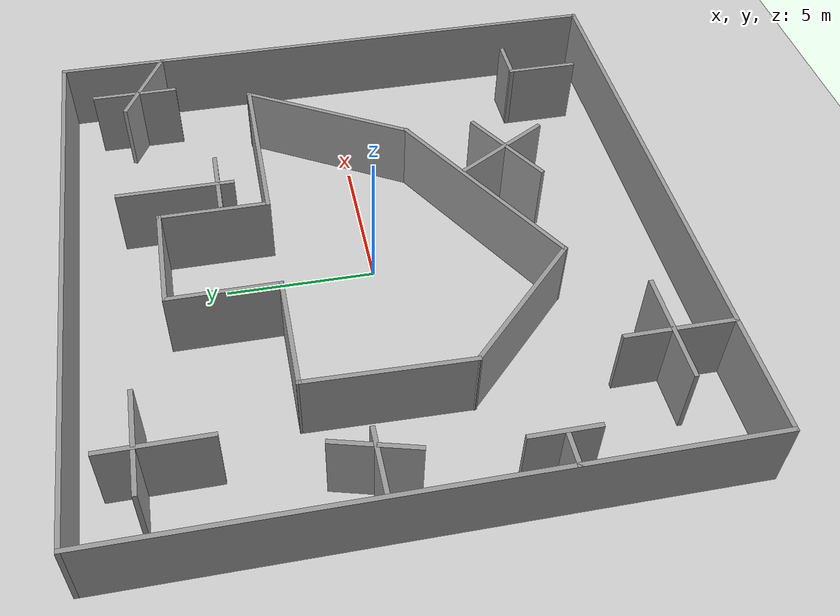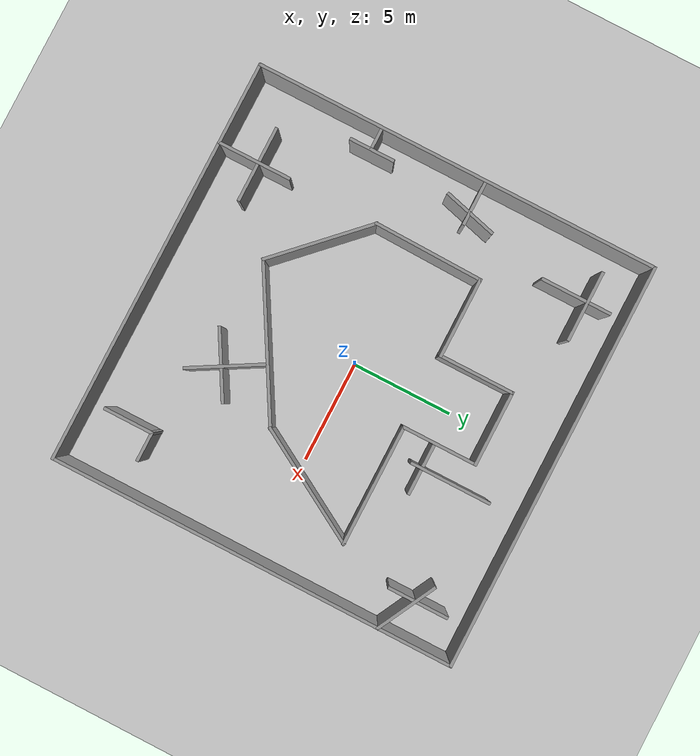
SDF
<sdf version="1.6">
 <world name="default">
  <light name="sun" type="directional">
   <pose>0 0 10 0 -0 0</pose>
   <diffuse>0.8 0.8 0.8 1</diffuse>
   <specular>0.2 0.2 0.2 1</specular>
   <attenuation>
    <range>1000</range>
    <constant>0.9</constant>
    <linear>0.01</linear>
    <quadratic>0.001</quadratic>
   </attenuation>
   <direction>-0.5 0.1 -0.9</direction>
  </light>
  <model name="ground_plane">
   <static>1</static>
   <link name="link">
    <collision name="collision">
     <geometry><plane><normal>0 0 1</normal><size>100 100</size></plane></geometry>
     <surface>
      <contact><collide_bitmask>65535</collide_bitmask></contact>
      <friction><ode><mu>100</mu><mu2>50</mu2></ode></friction>
     </surface>
    </collision>
    <visual name="visual">
     <cast_shadows>0</cast_shadows>
     <geometry><plane><normal>0 0 1</normal><size>100 100</size></plane></geometry>
     <material>
      <script><uri>file://media/materials/scripts/gazebo.material</uri><name>Gazebo/Grey</name></script>
     </material>
    </visual>
   </link>
  </model>
  <gravity>0 0 -9.8</gravity>
  <magnetic_field>6e-06 2.3e-05 -4.2e-05</magnetic_field>
  <atmosphere type="adiabatic"/>
  <physics name="default_physics" default="0" type="ode">
   <max_step_size>0.001</max_step_size>
   <real_time_factor>1</real_time_factor>
   <real_time_update_rate>1000</real_time_update_rate>
  </physics>
  <scene><ambient>0.4 0.4 0.4 1</ambient><background>0.7 0.7 0.7 1</background><shadows>1</shadows></scene>
  <audio><device>default</device></audio>
  <spherical_coordinates>
   <surface_model>EARTH_WGS84</surface_model>
   <latitude_deg>0</latitude_deg>
   <longitude_deg>0</longitude_deg>
   <elevation>0</elevation>
   <heading_deg>0</heading_deg>
  </spherical_coordinates>
  <model name="corner">
   <pose>0.013089 0 0 0 -0 0</pose>
   <link name="Wall_0">
    <collision name="Wall_0_Collision">
     <geometry><box><size>20.15 0.15 2.5</size></box></geometry>
     <pose>0 0 1.25 0 -0 0</pose>
    </collision>
    <visual name="Wall_0_Visual">
     <pose>0 0 1.25 0 -0 0</pose>
     <geometry><box><size>20.15 0.15 2.5</size></box></geometry>
     <material>
      <script><uri>file://media/materials/scripts/gazebo.material</uri><name>Gazebo/Grey</name></script>
      <ambient>1 1 1 1</ambient>
     </material>
     <meta><layer>0</layer></meta>
    </visual>
    <pose>-0.013089 -10 0 0 -0 0</pose>
   </link>
   <link name="Wall_1">
    <collision name="Wall_1_Collision">
     <geometry><box><size>20.15 0.15 2.5</size></box></geometry>
     <pose>0 0 1.25 0 -0 0</pose>
    </collision>
    <visual name="Wall_1_Visual">
     <pose>0 0 1.25 0 -0 0</pose>
     <geometry><box><size>20.15 0.15 2.5</size></box></geometry>
     <material>
      <script><uri>file://media/materials/scripts/gazebo.material</uri><name>Gazebo/Grey</name></script>
      <ambient>1 1 1 1</ambient>
     </material>
     <meta><layer>0</layer></meta>
    </visual>
    <pose>9.98691 0 0 0 -0 1.5708</pose>
   </link>
   <link name="Wall_10">
    <collision name="Wall_10_Collision">
     <geometry><box><size>6.25 0.15 2.5</size></box></geometry>
     <pose>0 0 1.25 0 -0 0</pose>
    </collision>
    <visual name="Wall_10_Visual">
     <pose>0 0 1.25 0 -0 0</pose>
     <geometry><box><size>6.25 0.15 2.5</size></box></geometry>
     <material>
      <script><uri>file://media/materials/scripts/gazebo.material</uri><name>Gazebo/Grey</name></script>
      <ambient>1 1 1 1</ambient>
     </material>
     <meta><layer>0</layer></meta>
    </visual>
    <pose>5.85445 0.643819 0 0 -0 -2.0944</pose>
   </link>
   <link name="Wall_11">
    <collision name="Wall_11_Collision">
     <geometry><box><size>7.75 0.15 2.5</size></box></geometry>
     <pose>0 0 1.25 0 -0 0</pose>
    </collision>
    <visual name="Wall_11_Visual">
     <pose>0 0 1.25 0 -0 0</pose>
     <geometry><box><size>7.75 0.15 2.5</size></box></geometry>
     <material>
      <script><uri>file://media/materials/scripts/gazebo.material</uri><name>Gazebo/Grey</name></script>
      <ambient>1 1 1 1</ambient>
     </material>
     <meta><layer>0</layer></meta>
    </visual>
    <pose>1.03855 -3.89756 0 0 -0 -2.61799</pose>
   </link>
   <link name="Wall_12">
    <collision name="Wall_12_Collision">
     <geometry><box><size>5.5 0.15 2.5</size></box></geometry>
     <pose>0 0 1.25 0 -0 0</pose>
    </collision>
    <visual name="Wall_12_Visual">
     <pose>0 0 1.25 0 -0 0</pose>
     <geometry><box><size>5.5 0.15 2.5</size></box></geometry>
     <material>
      <script><uri>file://media/materials/scripts/gazebo.material</uri><name>Gazebo/Grey</name></script>
      <ambient>1 1 1 1</ambient>
     </material>
     <meta><layer>0</layer></meta>
    </visual>
    <pose>-4.14386 -3.90605 0 0 -0 2.35619</pose>
   </link>
   <link name="Wall_13">
    <collision name="Wall_13_Collision">
     <geometry><box><size>5.45098 0.15 2.5</size></box></geometry>
     <pose>0 0 1.25 0 -0 0</pose>
    </collision>
    <visual name="Wall_13_Visual">
     <pose>0 0 1.25 0 -0 0</pose>
     <geometry><box><size>5.45098 0.15 2.5</size></box></geometry>
     <material>
      <script><uri>file://media/materials/scripts/gazebo.material</uri><name>Gazebo/Grey</name></script>
      <ambient>1 1 1 1</ambient>
     </material>
     <meta><layer>0</layer></meta>
    </visual>
    <pose>-5.97796 0.63533 0 0 -0 1.54914</pose>
   </link>
   <link name="Wall_15">
    <collision name="Wall_15_Collision">
     <geometry><box><size>3.5 0.15 2.5</size></box></geometry>
     <pose>0 0 1.25 0 -0 0</pose>
    </collision>
    <visual name="Wall_15_Visual">
     <pose>0 0 1.25 0 -0 0</pose>
     <geometry><box><size>3.5 0.15 2.5</size></box></geometry>
     <material>
      <script><uri>file://media/materials/scripts/gazebo.material</uri><name>Gazebo/Grey</name></script>
      <ambient>1 1 1 1</ambient>
     </material>
     <meta><layer>0</layer></meta>
    </visual>
    <pose>-7.03956 8.02521 0 0 -0 0</pose>
   </link>
   <link name="Wall_17">
    <collision name="Wall_17_Collision">
     <geometry><box><size>3.5 0.15 2.5</size></box></geometry>
     <pose>0 0 1.25 0 -0 0</pose>
    </collision>
    <visual name="Wall_17_Visual">
     <pose>0 0 1.25 0 -0 0</pose>
     <geometry><box><size>3.5 0.15 2.5</size></box></geometry>
     <material>
      <script><uri>file://media/materials/scripts/gazebo.material</uri><name>Gazebo/Grey</name></script>
      <ambient>1 1 1 1</ambient>
     </material>
     <meta><layer>0</layer></meta>
    </visual>
    <pose>-7.24623 7.45146 0 0 -0 -1.5708</pose>
   </link>
   <link name="Wall_19">
    <collision name="Wall_19_Collision">
     <geometry><box><size>3.75 0.15 2.5</size></box></geometry>
     <pose>0 0 1.25 0 -0 0</pose>
    </collision>
    <visual name="Wall_19_Visual">
     <pose>0 0 1.25 0 -0 0</pose>
     <geometry><box><size>3.75 0.15 2.5</size></box></geometry>
     <material>
      <script><uri>file://media/materials/scripts/gazebo.material</uri><name>Gazebo/Grey</name></script>
      <ambient>1 1 1 1</ambient>
     </material>
     <meta><layer>0</layer></meta>
    </visual>
    <pose>-5.93567 -8.00407 0 0 -0 0</pose>
   </link>
   <link name="Wall_2">
    <collision name="Wall_2_Collision">
     <geometry><box><size>20.15 0.15 2.5</size></box></geometry>
     <pose>0 0 1.25 0 -0 0</pose>
    </collision>
    <visual name="Wall_2_Visual">
     <pose>0 0 1.25 0 -0 0</pose>
     <geometry><box><size>20.15 0.15 2.5</size></box></geometry>
     <material>
      <script><uri>file://media/materials/scripts/gazebo.material</uri><name>Gazebo/Grey</name></script>
      <ambient>1 1 1 1</ambient>
     </material>
     <meta><layer>0</layer></meta>
    </visual>
    <pose>-0.013089 10 0 0 -0 3.14159</pose>
   </link>
   <link name="Wall_21">
    <collision name="Wall_21_Collision">
     <geometry><box><size>3.675 0.15 2.5</size></box></geometry>
     <pose>0 0 1.25 0 -0 0</pose>
    </collision>
    <visual name="Wall_21_Visual">
     <pose>0 0 1.25 0 -0 0</pose>
     <geometry><box><size>3.675 0.15 2.5</size></box></geometry>
     <material>
      <script><uri>file://media/materials/scripts/gazebo.material</uri><name>Gazebo/Grey</name></script>
      <ambient>1 1 1 1</ambient>
     </material>
     <meta><layer>0</layer></meta>
    </visual>
    <pose>-6.02309 -8.2375 0 0 -0 -1.5708</pose>
   </link>
   <link name="Wall_23">
    <collision name="Wall_23_Collision">
     <geometry><box><size>3.5 0.15 2.5</size></box></geometry>
     <pose>0 0 1.25 0 -0 0</pose>
    </collision>
    <visual name="Wall_23_Visual">
     <pose>0 0 1.25 0 -0 0</pose>
     <geometry><box><size>3.5 0.15 2.5</size></box></geometry>
     <material>
      <script><uri>file://media/materials/scripts/gazebo.material</uri><name>Gazebo/Grey</name></script>
      <ambient>1 1 1 1</ambient>
     </material>
     <meta><layer>0</layer></meta>
    </visual>
    <pose>2.83081 -5.26997 0 0 -0 0.523599</pose>
   </link>
   <link name="Wall_25">
    <collision name="Wall_25_Collision">
     <geometry><box><size>3.75 0.15 2.5</size></box></geometry>
     <pose>0 0 1.25 0 -0 0</pose>
    </collision>
    <visual name="Wall_25_Visual">
     <pose>0 0 1.25 0 -0 0</pose>
     <geometry><box><size>3.75 0.15 2.5</size></box></geometry>
     <material>
      <script><uri>file://media/materials/scripts/gazebo.material</uri><name>Gazebo/Grey</name></script>
      <ambient>1 1 1 1</ambient>
     </material>
     <meta><layer>0</layer></meta>
    </visual>
    <pose>2.80507 -5.09925 0 0 -0 2.0944</pose>
   </link>
   <link name="Wall_27">
    <collision name="Wall_27_Collision">
     <geometry><box><size>2.5 0.15 2.5</size></box></geometry>
     <pose>0 0 1.25 0 -0 0</pose>
    </collision>
    <visual name="Wall_27_Visual">
     <pose>0 0 1.25 0 -0 0</pose>
     <geometry><box><size>2.5 0.15 2.5</size></box></geometry>
     <material>
      <script><uri>file://media/materials/scripts/gazebo.material</uri><name>Gazebo/Grey</name></script>
      <ambient>1 1 1 1</ambient>
     </material>
     <meta><layer>0</layer></meta>
    </visual>
    <pose>2.86112 4.84383 0 0 -0 0</pose>
   </link>
   <link name="Wall_29">
    <collision name="Wall_29_Collision">
     <geometry><box><size>4 0.15 2.5</size></box></geometry>
     <pose>0 0 1.25 0 -0 0</pose>
    </collision>
    <visual name="Wall_29_Visual">
     <pose>0 0 1.25 0 -0 0</pose>
     <geometry><box><size>4 0.15 2.5</size></box></geometry>
     <material>
      <script><uri>file://media/materials/scripts/gazebo.material</uri><name>Gazebo/Grey</name></script>
      <ambient>1 1 1 1</ambient>
     </material>
     <meta><layer>0</layer></meta>
    </visual>
    <pose>2.78737 6.27938 0 0 -0 1.5708</pose>
   </link>
   <link name="Wall_3">
    <collision name="Wall_3_Collision">
     <geometry><box><size>20.15 0.15 2.5</size></box></geometry>
     <pose>0 0 1.25 0 -0 0</pose>
    </collision>
    <visual name="Wall_3_Visual">
     <pose>0 0 1.25 0 -0 0</pose>
     <geometry><box><size>20.15 0.15 2.5</size></box></geometry>
     <material>
      <script><uri>file://media/materials/scripts/gazebo.material</uri><name>Gazebo/Grey</name></script>
      <ambient>1 1 1 1</ambient>
     </material>
     <meta><layer>0</layer></meta>
    </visual>
    <pose>-10.0131 0 0 0 -0 -1.5708</pose>
   </link>
   <link name="Wall_31">
    <collision name="Wall_31_Collision">
     <geometry><box><size>1.5 0.15 2.5</size></box></geometry>
     <pose>0 0 1.25 0 -0 0</pose>
    </collision>
    <visual name="Wall_31_Visual">
     <pose>0 0 1.25 0 -0 0</pose>
     <geometry><box><size>1.5 0.15 2.5</size></box></geometry>
     <material>
      <script><uri>file://media/materials/scripts/gazebo.material</uri><name>Gazebo/Grey</name></script>
      <ambient>1 1 1 1</ambient>
     </material>
     <meta><layer>0</layer></meta>
    </visual>
    <pose>7.62264 -6.59692 0 0 -0 0</pose>
   </link>
   <link name="Wall_33">
    <collision name="Wall_33_Collision">
     <geometry><box><size>2.5 0.15 2.5</size></box></geometry>
     <pose>0 0 1.25 0 -0 0</pose>
    </collision>
    <visual name="Wall_33_Visual">
     <pose>0 0 1.25 0 -0 0</pose>
     <geometry><box><size>2.5 0.15 2.5</size></box></geometry>
     <material>
      <script><uri>file://media/materials/scripts/gazebo.material</uri><name>Gazebo/Grey</name></script>
      <ambient>1 1 1 1</ambient>
     </material>
     <meta><layer>0</layer></meta>
    </visual>
    <pose>6.94764 -7.77192 0 0 -0 -1.5708</pose>
   </link>
   <link name="Wall_38">
    <collision name="Wall_38_Collision">
     <geometry><box><size>3.23219 0.15 2.5</size></box></geometry>
     <pose>0 0 1.25 0 -0 0</pose>
    </collision>
    <visual name="Wall_38_Visual">
     <pose>0 0 1.25 0 -0 0</pose>
     <geometry><box><size>3.23219 0.15 2.5</size></box></geometry>
     <material>
      <script><uri>file://media/materials/scripts/gazebo.material</uri><name>Gazebo/Grey</name></script>
      <ambient>1 1 1 1</ambient>
     </material>
     <meta><layer>0</layer></meta>
    </visual>
    <pose>8.62041 7.0675 0 0 -0 -0.480625</pose>
   </link>
   <link name="Wall_40">
    <collision name="Wall_40_Collision">
     <geometry><box><size>3 0.15 2.5</size></box></geometry>
     <pose>0 0 1.25 0 -0 0</pose>
    </collision>
    <visual name="Wall_40_Visual">
     <pose>0 0 1.25 0 -0 0</pose>
     <geometry><box><size>3 0.15 2.5</size></box></geometry>
     <material>
      <script><uri>file://media/materials/scripts/gazebo.material</uri><name>Gazebo/Grey</name></script>
      <ambient>1 1 1 1</ambient>
     </material>
     <meta><layer>0</layer></meta>
    </visual>
    <pose>8.17125 7.43126 0 0 -0 1.5708</pose>
   </link>
   <link name="Wall_42">
    <collision name="Wall_42_Collision">
     <geometry><box><size>2.25 0.15 2.5</size></box></geometry>
     <pose>0 0 1.25 0 -0 0</pose>
    </collision>
    <visual name="Wall_42_Visual">
     <pose>0 0 1.25 0 -0 0</pose>
     <geometry><box><size>2.25 0.15 2.5</size></box></geometry>
     <material>
      <script><uri>file://media/materials/scripts/gazebo.material</uri><name>Gazebo/Grey</name></script>
      <ambient>1 1 1 1</ambient>
     </material>
     <meta><layer>0</layer></meta>
    </visual>
    <pose>-8.88817 1.4789 0 0 -0 0</pose>
   </link>
   <link name="Wall_44">
    <collision name="Wall_44_Collision">
     <geometry><box><size>1.20256 0.15 2.5</size></box></geometry>
     <pose>0 0 1.25 0 -0 0</pose>
    </collision>
    <visual name="Wall_44_Visual">
     <pose>0 0 1.25 0 -0 0</pose>
     <geometry><box><size>1.20256 0.15 2.5</size></box></geometry>
     <material>
      <script><uri>file://media/materials/scripts/gazebo.material</uri><name>Gazebo/Grey</name></script>
      <ambient>1 1 1 1</ambient>
     </material>
     <meta><layer>0</layer></meta>
    </visual>
    <pose>-9.48659 -3.783 0 0 -0 0</pose>
   </link>
   <link name="Wall_46">
    <collision name="Wall_46_Collision">
     <geometry><box><size>2.25 0.15 2.5</size></box></geometry>
     <pose>0 0 1.25 0 -0 0</pose>
    </collision>
    <visual name="Wall_46_Visual">
     <pose>0 0 1.25 0 -0 0</pose>
     <geometry><box><size>2.25 0.15 2.5</size></box></geometry>
     <material>
      <script><uri>file://media/materials/scripts/gazebo.material</uri><name>Gazebo/Grey</name></script>
      <ambient>1 1 1 1</ambient>
     </material>
     <meta><layer>0</layer></meta>
    </visual>
    <pose>-8.8981 -3.73137 0 0 -0 -1.5708</pose>
   </link>
   <link name="Wall_48">
    <collision name="Wall_48_Collision">
     <geometry><box><size>2.75 0.15 2.5</size></box></geometry>
     <pose>0 0 1.25 0 -0 0</pose>
    </collision>
    <visual name="Wall_48_Visual">
     <pose>0 0 1.25 0 -0 0</pose>
     <geometry><box><size>2.75 0.15 2.5</size></box></geometry>
     <material>
      <script><uri>file://media/materials/scripts/gazebo.material</uri><name>Gazebo/Grey</name></script>
      <ambient>1 1 1 1</ambient>
     </material>
     <meta><layer>0</layer></meta>
    </visual>
    <pose>-8.37804 1.50799 0 0 -0 -1.8326</pose>
   </link>
   <link name="Wall_5">
    <collision name="Wall_5_Collision">
     <geometry><box><size>4 0.15 2.5</size></box></geometry>
     <pose>0 0 1.25 0 -0 0</pose>
    </collision>
    <visual name="Wall_5_Visual">
     <pose>0 0 1.25 0 -0 0</pose>
     <geometry><box><size>4 0.15 2.5</size></box></geometry>
     <material>
      <script><uri>file://media/materials/scripts/gazebo.material</uri><name>Gazebo/Grey</name></script>
      <ambient>1 1 1 1</ambient>
     </material>
     <meta><layer>0</layer></meta>
    </visual>
    <pose>-3.99555 3.2852 0 0 -0 0</pose>
   </link>
   <link name="Wall_6">
    <collision name="Wall_6_Collision">
     <geometry><box><size>3.75 0.15 2.5</size></box></geometry>
     <pose>0 0 1.25 0 -0 0</pose>
    </collision>
    <visual name="Wall_6_Visual">
     <pose>0 0 1.25 0 -0 0</pose>
     <geometry><box><size>3.75 0.15 2.5</size></box></geometry>
     <material>
      <script><uri>file://media/materials/scripts/gazebo.material</uri><name>Gazebo/Grey</name></script>
      <ambient>1 1 1 1</ambient>
     </material>
     <meta><layer>0</layer></meta>
    </visual>
    <pose>-2.07055 5.0852 0 0 -0 1.5708</pose>
   </link>
   <link name="Wall_7">
    <collision name="Wall_7_Collision">
     <geometry><box><size>3.75 0.15 2.5</size></box></geometry>
     <pose>0 0 1.25 0 -0 0</pose>
    </collision>
    <visual name="Wall_7_Visual">
     <pose>0 0 1.25 0 -0 0</pose>
     <geometry><box><size>3.75 0.15 2.5</size></box></geometry>
     <material>
      <script><uri>file://media/materials/scripts/gazebo.material</uri><name>Gazebo/Grey</name></script>
      <ambient>1 1 1 1</ambient>
     </material>
     <meta><layer>0</layer></meta>
    </visual>
    <pose>-0.270552 6.8852 0 0 -0 0</pose>
   </link>
   <link name="Wall_8">
    <collision name="Wall_8_Collision">
     <geometry><box><size>3.75 0.15 2.5</size></box></geometry>
     <pose>0 0 1.25 0 -0 0</pose>
    </collision>
    <visual name="Wall_8_Visual">
     <pose>0 0 1.25 0 -0 0</pose>
     <geometry><box><size>3.75 0.15 2.5</size></box></geometry>
     <material>
      <script><uri>file://media/materials/scripts/gazebo.material</uri><name>Gazebo/Grey</name></script>
      <ambient>1 1 1 1</ambient>
     </material>
     <meta><layer>0</layer></meta>
    </visual>
    <pose>1.52945 5.0852 0 0 -0 -1.5708</pose>
   </link>
   <link name="Wall_9">
    <collision name="Wall_9_Collision">
     <geometry><box><size>6 0.15 2.5</size></box></geometry>
     <pose>0 0 1.25 0 -0 0</pose>
    </collision>
    <visual name="Wall_9_Visual">
     <pose>0 0 1.25 0 -0 0</pose>
     <geometry><box><size>6 0.15 2.5</size></box></geometry>
     <material>
      <script><uri>file://media/materials/scripts/gazebo.material</uri><name>Gazebo/Grey</name></script>
      <ambient>1 1 1 1</ambient>
     </material>
     <meta><layer>0</layer></meta>
    </visual>
    <pose>4.45445 3.2852 0 0 -0 0</pose>
   </link>
   <static>1</static>
  </model>
  <plugin name="gazebo_occupancy_map" filename="libgazebo_2Dmap_plugin.so">
   <map_resolution>0.1</map_resolution>
   <map_height>0.3</map_height>
   <map_size_x>25</map_size_x>
   <map_size_y>25</map_size_y>
   <init_robot_x>7</init_robot_x>
   <init_robot_y>7</init_robot_y>
  </plugin>
 </world>
</sdf>
